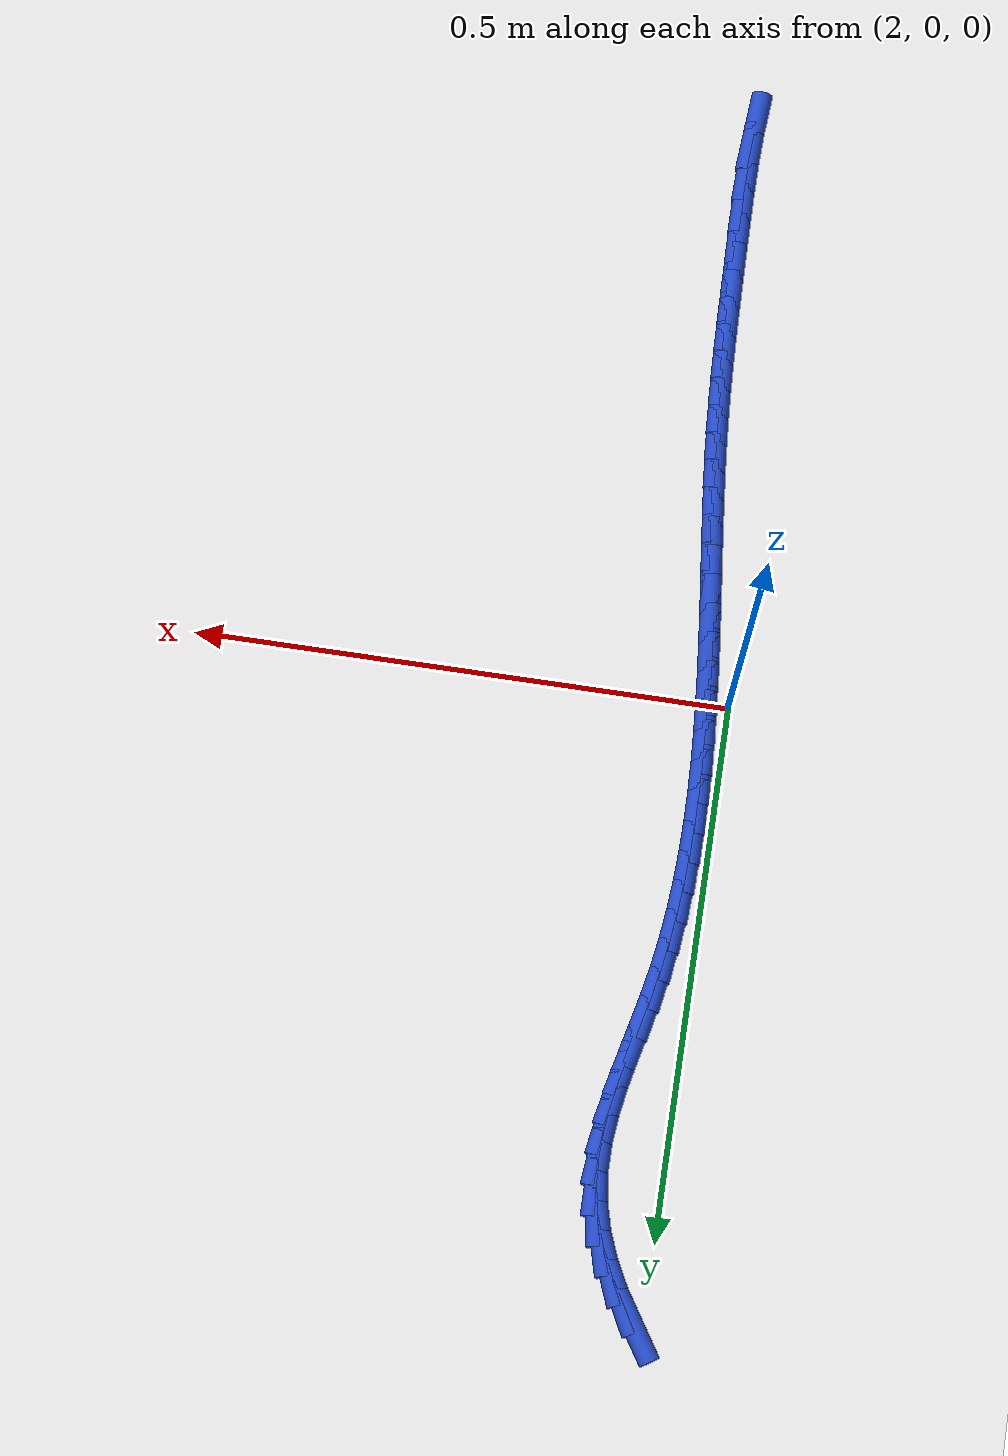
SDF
<sdf version="1.6">
 <world name="default">
  <model name="ground_plane">
   <static>1</static>
   <link name="link">
    <collision name="collision">
     <geometry><plane><normal>0 0 1</normal><size>100 100</size></plane></geometry>
     <surface><friction><ode><mu>100</mu><mu2>50</mu2></ode></friction></surface>
    </collision>
    <visual name="visual">
     <cast_shadows>0</cast_shadows>
     <geometry><plane><normal>0 0 1</normal><size>100 100</size></plane></geometry>
     <material>
      <script><uri>file://media/materials/scripts/gazebo.material</uri><name>Gazebo/WhiteGlow</name></script>
     </material>
    </visual>
   </link>
  </model>
  <model name="line">
   <link name="link_102">
    <pose>2.011957981720538 0.5722096276921511 0.01 0 1.57 -1.0035769572297293</pose>
    <collision name="collision">
     <geometry><cylinder><radius>0.01</radius><length>0.08</length></cylinder></geometry>
    </collision>
    <visual name="visual">
     <material>
      <script><name>Gazebo/Blue</name><uri>file://media/materials/scripts/gazebo.material</uri></script>
     </material>
     <geometry><cylinder><radius>0.01</radius><length>0.08</length></cylinder></geometry>
    </visual>
   </link>
   <link name="link_103">
    <pose>2.0272883142252907 0.5481451547742388 0.01 0 1.57 -1.096416481052261</pose>
    <collision name="collision">
     <geometry><cylinder><radius>0.01</radius><length>0.08</length></cylinder></geometry>
    </collision>
    <visual name="visual">
     <material>
      <script><name>Gazebo/Blue</name><uri>file://media/materials/scripts/gazebo.material</uri></script>
     </material>
     <geometry><cylinder><radius>0.01</radius><length>0.08</length></cylinder></geometry>
    </visual>
   </link>
   <link name="link_104">
    <pose>2.040074029386577 0.5232454290653006 0.01 0 1.57 -1.2000324323997384</pose>
    <collision name="collision">
     <geometry><cylinder><radius>0.01</radius><length>0.08</length></cylinder></geometry>
    </collision>
    <visual name="visual">
     <material>
      <script><name>Gazebo/Blue</name><uri>file://media/materials/scripts/gazebo.material</uri></script>
     </material>
     <geometry><cylinder><radius>0.01</radius><length>0.08</length></cylinder></geometry>
    </visual>
   </link>
   <link name="link_105">
    <pose>2.050023561117981 0.49765126710392693 0.01 0 1.57 -1.3155916720677592</pose>
    <collision name="collision">
     <geometry><cylinder><radius>0.01</radius><length>0.08</length></cylinder></geometry>
    </collision>
    <visual name="visual">
     <material>
      <script><name>Gazebo/Blue</name><uri>file://media/materials/scripts/gazebo.material</uri></script>
     </material>
     <geometry><cylinder><radius>0.01</radius><length>0.08</length></cylinder></geometry>
    </visual>
   </link>
   <link name="link_106">
    <pose>2.0568453433330864 0.47150348542870696 0.01 0 1.57 -1.4431740256910581</pose>
    <collision name="collision">
     <geometry><cylinder><radius>0.01</radius><length>0.08</length></cylinder></geometry>
    </collision>
    <visual name="visual">
     <material>
      <script><name>Gazebo/Blue</name><uri>file://media/materials/scripts/gazebo.material</uri></script>
     </material>
     <geometry><cylinder><radius>0.01</radius><length>0.08</length></cylinder></geometry>
    </visual>
   </link>
   <link name="link_107">
    <pose>2.0602536689197932 0.4449422878888221 0.01 0 1.57 -1.5680777183332932</pose>
    <collision name="collision">
     <geometry><cylinder><radius>0.01</radius><length>0.08</length></cylinder></geometry>
    </collision>
    <visual name="visual">
     <material>
      <script><name>Gazebo/Blue</name><uri>file://media/materials/scripts/gazebo.material</uri></script>
     </material>
     <geometry><cylinder><radius>0.01</radius><length>0.08</length></cylinder></geometry>
    </visual>
   </link>
   <link name="link_108">
    <pose>2.0603267248050097 0.4180698249111951 0.01 0 1.57 1.4748266513515933</pose>
    <collision name="collision">
     <geometry><cylinder><radius>0.01</radius><length>0.08</length></cylinder></geometry>
    </collision>
    <visual name="visual">
     <material>
      <script><name>Gazebo/Blue</name><uri>file://media/materials/scripts/gazebo.material</uri></script>
     </material>
     <geometry><cylinder><radius>0.01</radius><length>0.08</length></cylinder></geometry>
    </visual>
   </link>
   <link name="link_109">
    <pose>2.057713955232459 0.3909285089398061 0.01 0 1.57 1.4043330414880222</pose>
    <collision name="collision">
     <geometry><cylinder><radius>0.01</radius><length>0.08</length></cylinder></geometry>
    </collision>
    <visual name="visual">
     <material>
      <script><name>Gazebo/Blue</name><uri>file://media/materials/scripts/gazebo.material</uri></script>
     </material>
     <geometry><cylinder><radius>0.01</radius><length>0.08</length></cylinder></geometry>
    </visual>
   </link>
   <link name="link_110">
    <pose>2.0531147986949825 0.36355552437951283 0.01 0 1.57 1.3604387069731667</pose>
    <collision name="collision">
     <geometry><cylinder><radius>0.01</radius><length>0.08</length></cylinder></geometry>
    </collision>
    <visual name="visual">
     <material>
      <script><name>Gazebo/Blue</name><uri>file://media/materials/scripts/gazebo.material</uri></script>
     </material>
     <geometry><cylinder><radius>0.01</radius><length>0.08</length></cylinder></geometry>
    </visual>
   </link>
   <link name="link_111">
    <pose>2.0472286936854243 0.3359880556351735 0.01 0 1.57 1.3414103900852787</pose>
    <collision name="collision">
     <geometry><cylinder><radius>0.01</radius><length>0.08</length></cylinder></geometry>
    </collision>
    <visual name="visual">
     <material>
      <script><name>Gazebo/Blue</name><uri>file://media/materials/scripts/gazebo.material</uri></script>
     </material>
     <geometry><cylinder><radius>0.01</radius><length>0.08</length></cylinder></geometry>
    </visual>
   </link>
   <link name="link_112">
    <pose>2.0407550786966273 0.3082632871116458 0.01 0 1.57 1.346182718615447</pose>
    <collision name="collision">
     <geometry><cylinder><radius>0.01</radius><length>0.08</length></cylinder></geometry>
    </collision>
    <visual name="visual">
     <material>
      <script><name>Gazebo/Blue</name><uri>file://media/materials/scripts/gazebo.material</uri></script>
     </material>
     <geometry><cylinder><radius>0.01</radius><length>0.08</length></cylinder></geometry>
    </visual>
   </link>
   <link name="link_113">
    <pose>2.0343933922214346 0.28041840321378786 0.01 0 1.57 1.3742487950182634</pose>
    <collision name="collision">
     <geometry><cylinder><radius>0.01</radius><length>0.08</length></cylinder></geometry>
    </collision>
    <visual name="visual">
     <material>
      <script><name>Gazebo/Blue</name><uri>file://media/materials/scripts/gazebo.material</uri></script>
     </material>
     <geometry><cylinder><radius>0.01</radius><length>0.08</length></cylinder></geometry>
    </visual>
   </link>
   <link name="link_114">
    <pose>2.028832391475658 0.25249026434165445 0.01 0 1.57 1.4143290141962936</pose>
    <collision name="collision">
     <geometry><cylinder><radius>0.01</radius><length>0.08</length></cylinder></geometry>
    </collision>
    <visual name="visual">
     <material>
      <script><name>Gazebo/Blue</name><uri>file://media/materials/scripts/gazebo.material</uri></script>
     </material>
     <geometry><cylinder><radius>0.01</radius><length>0.08</length></cylinder></geometry>
    </visual>
   </link>
   <link name="link_115">
    <pose>2.024417575400242 0.22450531853267588 0.01 0 1.57 1.4524916416708702</pose>
    <collision name="collision">
     <geometry><cylinder><radius>0.01</radius><length>0.08</length></cylinder></geometry>
    </collision>
    <visual name="visual">
     <material>
      <script><name>Gazebo/Blue</name><uri>file://media/materials/scripts/gazebo.material</uri></script>
     </material>
     <geometry><cylinder><radius>0.01</radius><length>0.08</length></cylinder></geometry>
    </visual>
   </link>
   <link name="link_116">
    <pose>2.021086212164397 0.19647763059235163 0.01 0 1.57 1.4877842932272767</pose>
    <collision name="collision">
     <geometry><cylinder><radius>0.01</radius><length>0.08</length></cylinder></geometry>
    </collision>
    <visual name="visual">
     <material>
      <script><name>Gazebo/Blue</name><uri>file://media/materials/scripts/gazebo.material</uri></script>
     </material>
     <geometry><cylinder><radius>0.01</radius><length>0.08</length></cylinder></geometry>
    </visual>
   </link>
   <link name="link_117">
    <pose>2.018751771629976 0.168420543430675 0.01 0 1.57 1.5201134234213662</pose>
    <collision name="collision">
     <geometry><cylinder><radius>0.01</radius><length>0.08</length></cylinder></geometry>
    </collision>
    <visual name="visual">
     <material>
      <script><name>Gazebo/Blue</name><uri>file://media/materials/scripts/gazebo.material</uri></script>
     </material>
     <geometry><cylinder><radius>0.01</radius><length>0.08</length></cylinder></geometry>
    </visual>
   </link>
   <link name="link_118">
    <pose>2.0173277236588234 0.14034739995763917 0.01 0 1.57 1.5494222990006252</pose>
    <collision name="collision">
     <geometry><cylinder><radius>0.01</radius><length>0.08</length></cylinder></geometry>
    </collision>
    <visual name="visual">
     <material>
      <script><name>Gazebo/Blue</name><uri>file://media/materials/scripts/gazebo.material</uri></script>
     </material>
     <geometry><cylinder><radius>0.01</radius><length>0.08</length></cylinder></geometry>
    </visual>
   </link>
   <link name="link_119">
    <pose>2.01672753811279 0.1122715430832374 0.01 0 1.57 -1.5659096516408144</pose>
    <collision name="collision">
     <geometry><cylinder><radius>0.01</radius><length>0.08</length></cylinder></geometry>
    </collision>
    <visual name="visual">
     <material>
      <script><name>Gazebo/Blue</name><uri>file://media/materials/scripts/gazebo.material</uri></script>
     </material>
     <geometry><cylinder><radius>0.01</radius><length>0.08</length></cylinder></geometry>
    </visual>
   </link>
   <link name="link_120">
    <pose>2.016864684853723 0.08420631571746333 0.01 0 1.57 -1.5427040889791162</pose>
    <collision name="collision">
     <geometry><cylinder><radius>0.01</radius><length>0.08</length></cylinder></geometry>
    </collision>
    <visual name="visual">
     <material>
      <script><name>Gazebo/Blue</name><uri>file://media/materials/scripts/gazebo.material</uri></script>
     </material>
     <geometry><cylinder><radius>0.01</radius><length>0.08</length></cylinder></geometry>
    </visual>
   </link>
   <link name="link_121">
    <pose>2.0176526337434706 0.05616506077030936 0.01 0 1.57 -1.5225469935461828</pose>
    <collision name="collision">
     <geometry><cylinder><radius>0.01</radius><length>0.08</length></cylinder></geometry>
    </collision>
    <visual name="visual">
     <material>
      <script><name>Gazebo/Blue</name><uri>file://media/materials/scripts/gazebo.material</uri></script>
     </material>
     <geometry><cylinder><radius>0.01</radius><length>0.08</length></cylinder></geometry>
    </visual>
   </link>
   <link name="link_122">
    <pose>2.019004854643882 0.028161121151769133 0.01 0 1.57 -1.5054245644214628</pose>
    <collision name="collision">
     <geometry><cylinder><radius>0.01</radius><length>0.08</length></cylinder></geometry>
    </collision>
    <visual name="visual">
     <material>
      <script><name>Gazebo/Blue</name><uri>file://media/materials/scripts/gazebo.material</uri></script>
     </material>
     <geometry><cylinder><radius>0.01</radius><length>0.08</length></cylinder></geometry>
    </visual>
   </link>
   <link name="link_123">
    <pose>2.020834817416805 0.00020783977183587085 0.01 0 1.57 -1.4913214884076287</pose>
    <collision name="collision">
     <geometry><cylinder><radius>0.01</radius><length>0.08</length></cylinder></geometry>
    </collision>
    <visual name="visual">
     <material>
      <script><name>Gazebo/Blue</name><uri>file://media/materials/scripts/gazebo.material</uri></script>
     </material>
     <geometry><cylinder><radius>0.01</radius><length>0.08</length></cylinder></geometry>
    </visual>
   </link>
   <link name="link_124">
    <pose>2.0230559919240885 -0.02768144045949719 0.01 0 1.57 -1.480225654688996</pose>
    <collision name="collision">
     <geometry><cylinder><radius>0.01</radius><length>0.08</length></cylinder></geometry>
    </collision>
    <visual name="visual">
     <material>
      <script><name>Gazebo/Blue</name><uri>file://media/materials/scripts/gazebo.material</uri></script>
     </material>
     <geometry><cylinder><radius>0.01</radius><length>0.08</length></cylinder></geometry>
    </visual>
   </link>
   <link name="link_125">
    <pose>2.025581848027581 -0.05549337663223682 0.01 0 1.57 -1.4721320213880862</pose>
    <collision name="collision">
     <geometry><cylinder><radius>0.01</radius><length>0.08</length></cylinder></geometry>
    </collision>
    <visual name="visual">
     <material>
      <script><name>Gazebo/Blue</name><uri>file://media/materials/scripts/gazebo.material</uri></script>
     </material>
     <geometry><cylinder><radius>0.01</radius><length>0.08</length></cylinder></geometry>
    </visual>
   </link>
   <link name="link_126">
    <pose>2.02832585558913 -0.08321462583638983 0.01 0 1.57 -1.467045710310305</pose>
    <collision name="collision">
     <geometry><cylinder><radius>0.01</radius><length>0.08</length></cylinder></geometry>
    </collision>
    <visual name="visual">
     <material>
      <script><name>Gazebo/Blue</name><uri>file://media/materials/scripts/gazebo.material</uri></script>
     </material>
     <geometry><cylinder><radius>0.01</radius><length>0.08</length></cylinder></geometry>
    </visual>
   </link>
   <link name="link_127">
    <pose>2.0312014844705844 -0.1108318451619629 0.01 0 1.57 -1.4649844042233167</pose>
    <collision name="collision">
     <geometry><cylinder><radius>0.01</radius><length>0.08</length></cylinder></geometry>
    </collision>
    <visual name="visual">
     <material>
      <script><name>Gazebo/Blue</name><uri>file://media/materials/scripts/gazebo.material</uri></script>
     </material>
     <geometry><cylinder><radius>0.01</radius><length>0.08</length></cylinder></geometry>
    </visual>
   </link>
   <link name="link_128">
    <pose>2.0341222045337926 -0.13833169169896287 0.01 0 1.57 -1.465980100016834</pose>
    <collision name="collision">
     <geometry><cylinder><radius>0.01</radius><length>0.08</length></cylinder></geometry>
    </collision>
    <visual name="visual">
     <material>
      <script><name>Gazebo/Blue</name><uri>file://media/materials/scripts/gazebo.material</uri></script>
     </material>
     <geometry><cylinder><radius>0.01</radius><length>0.08</length></cylinder></geometry>
    </visual>
   </link>
   <link name="link_129">
    <pose>2.0370014856406025 -0.16570082253739654 0.01 0 1.57 -1.470080235552563</pose>
    <collision name="collision">
     <geometry><cylinder><radius>0.01</radius><length>0.08</length></cylinder></geometry>
    </collision>
    <visual name="visual">
     <material>
      <script><name>Gazebo/Blue</name><uri>file://media/materials/scripts/gazebo.material</uri></script>
     </material>
     <geometry><cylinder><radius>0.01</radius><length>0.08</length></cylinder></geometry>
    </visual>
   </link>
   <link name="link_130">
    <pose>2.039752797652863 -0.1929258947672706 0.01 0 1.57 -1.4773481607400512</pose>
    <collision name="collision">
     <geometry><cylinder><radius>0.01</radius><length>0.08</length></cylinder></geometry>
    </collision>
    <visual name="visual">
     <material>
      <script><name>Gazebo/Blue</name><uri>file://media/materials/scripts/gazebo.material</uri></script>
     </material>
     <geometry><cylinder><radius>0.01</radius><length>0.08</length></cylinder></geometry>
    </visual>
   </link>
   <link name="link_131">
    <pose>2.042289610432422 -0.2199935654785918 0.01 0 1.57 -1.4878628660022317</pose>
    <collision name="collision">
     <geometry><cylinder><radius>0.01</radius><length>0.08</length></cylinder></geometry>
    </collision>
    <visual name="visual">
     <material>
      <script><name>Gazebo/Blue</name><uri>file://media/materials/scripts/gazebo.material</uri></script>
     </material>
     <geometry><cylinder><radius>0.01</radius><length>0.08</length></cylinder></geometry>
    </visual>
   </link>
   <link name="link_132">
    <pose>2.0445253938411283 -0.24689049176136704 0.01 0 1.57 -1.5016007044027737</pose>
    <collision name="collision">
     <geometry><cylinder><radius>0.01</radius><length>0.08</length></cylinder></geometry>
    </collision>
    <visual name="visual">
     <material>
      <script><name>Gazebo/Blue</name><uri>file://media/materials/scripts/gazebo.material</uri></script>
     </material>
     <geometry><cylinder><radius>0.01</radius><length>0.08</length></cylinder></geometry>
    </visual>
   </link>
   <link name="link_133">
    <pose>2.0463771075822663 -0.2736083299312431 0.01 0 1.57 -1.5161401069852487</pose>
    <collision name="collision">
     <geometry><cylinder><radius>0.01</radius><length>0.08</length></cylinder></geometry>
    </collision>
    <visual name="visual">
     <material>
      <script><name>Gazebo/Blue</name><uri>file://media/materials/scripts/gazebo.material</uri></script>
     </material>
     <geometry><cylinder><radius>0.01</radius><length>0.08</length></cylinder></geometry>
    </visual>
   </link>
   <link name="link_134">
    <pose>2.04783429346178 -0.3002427107437467 0.01 0 1.57 -1.528915295974223</pose>
    <collision name="collision">
     <geometry><cylinder><radius>0.01</radius><length>0.08</length></cylinder></geometry>
    </collision>
    <visual name="visual">
     <material>
      <script><name>Gazebo/Blue</name><uri>file://media/materials/scripts/gazebo.material</uri></script>
     </material>
     <geometry><cylinder><radius>0.01</radius><length>0.08</length></cylinder></geometry>
    </visual>
   </link>
   <link name="link_135">
    <pose>2.0489550468355286 -0.32698746846040994 0.01 0 1.57 -1.5395676039907762</pose>
    <collision name="collision">
     <geometry><cylinder><radius>0.01</radius><length>0.08</length></cylinder></geometry>
    </collision>
    <visual name="visual">
     <material>
      <script><name>Gazebo/Blue</name><uri>file://media/materials/scripts/gazebo.material</uri></script>
     </material>
     <geometry><cylinder><radius>0.01</radius><length>0.08</length></cylinder></geometry>
    </visual>
   </link>
   <link name="link_136">
    <pose>2.049800146366581 -0.3540402812017038 0.01 0 1.57 -1.5479317487644624</pose>
    <collision name="collision">
     <geometry><cylinder><radius>0.01</radius><length>0.08</length></cylinder></geometry>
    </collision>
    <visual name="visual">
     <material>
      <script><name>Gazebo/Blue</name><uri>file://media/materials/scripts/gazebo.material</uri></script>
     </material>
     <geometry><cylinder><radius>0.01</radius><length>0.08</length></cylinder></geometry>
    </visual>
   </link>
   <link name="link_137">
    <pose>2.0504303707180047 -0.38159882708809906 0.01 0 1.57 -1.5539509683810977</pose>
    <collision name="collision">
     <geometry><cylinder><radius>0.01</radius><length>0.08</length></cylinder></geometry>
    </collision>
    <visual name="visual">
     <material>
      <script><name>Gazebo/Blue</name><uri>file://media/materials/scripts/gazebo.material</uri></script>
     </material>
     <geometry><cylinder><radius>0.01</radius><length>0.08</length></cylinder></geometry>
    </visual>
   </link>
   <link name="link_138">
    <pose>2.05090649855287 -0.4098607842400669 0.01 0 1.57 -1.5576705377483673</pose>
    <collision name="collision">
     <geometry><cylinder><radius>0.01</radius><length>0.08</length></cylinder></geometry>
    </collision>
    <visual name="visual">
     <material>
      <script><name>Gazebo/Blue</name><uri>file://media/materials/scripts/gazebo.material</uri></script>
     </material>
     <geometry><cylinder><radius>0.01</radius><length>0.08</length></cylinder></geometry>
    </visual>
   </link>
   <link name="link_139">
    <pose>2.0512893085342445 -0.43902383077807816 0.01 0 1.57 -1.5593418093959532</pose>
    <collision name="collision">
     <geometry><cylinder><radius>0.01</radius><length>0.08</length></cylinder></geometry>
    </collision>
    <visual name="visual">
     <material>
      <script><name>Gazebo/Blue</name><uri>file://media/materials/scripts/gazebo.material</uri></script>
     </material>
     <geometry><cylinder><radius>0.01</radius><length>0.08</length></cylinder></geometry>
    </visual>
   </link>
   <link name="link_140">
    <pose>2.0516358854738463 -0.46927929853325656 0.01 0 1.57 -1.5644795071552688</pose>
    <collision name="collision">
     <geometry><cylinder><radius>0.01</radius><length>0.08</length></cylinder></geometry>
    </collision>
    <visual name="visual">
     <material>
      <script><name>Gazebo/Blue</name><uri>file://media/materials/scripts/gazebo.material</uri></script>
     </material>
     <geometry><cylinder><radius>0.01</radius><length>0.08</length></cylinder></geometry>
    </visual>
   </link>
   <link name="link_141">
    <pose>2.051833270227752 -0.5005263721868618 0.01 0 1.57 1.5612690614386986</pose>
    <collision name="collision">
     <geometry><cylinder><radius>0.01</radius><length>0.08</length></cylinder></geometry>
    </collision>
    <visual name="visual">
     <material>
      <script><name>Gazebo/Blue</name><uri>file://media/materials/scripts/gazebo.material</uri></script>
     </material>
     <geometry><cylinder><radius>0.01</radius><length>0.08</length></cylinder></geometry>
    </visual>
   </link>
   <link name="link_142">
    <pose>2.0515309632982754 -0.5322561258403523 0.01 0 1.57 1.5338680830547065</pose>
    <collision name="collision">
     <geometry><cylinder><radius>0.01</radius><length>0.08</length></cylinder></geometry>
    </collision>
    <visual name="visual">
     <material>
      <script><name>Gazebo/Blue</name><uri>file://media/materials/scripts/gazebo.material</uri></script>
     </material>
     <geometry><cylinder><radius>0.01</radius><length>0.08</length></cylinder></geometry>
    </visual>
   </link>
   <link name="link_143">
    <pose>2.0503607974082643 -0.5639292791412653 0.01 0 1.57 1.493524387102865</pose>
    <collision name="collision">
     <geometry><cylinder><radius>0.01</radius><length>0.08</length></cylinder></geometry>
    </collision>
    <visual name="visual">
     <material>
      <script><name>Gazebo/Blue</name><uri>file://media/materials/scripts/gazebo.material</uri></script>
     </material>
     <geometry><cylinder><radius>0.01</radius><length>0.08</length></cylinder></geometry>
    </visual>
   </link>
  </model>
 </world>
</sdf>
